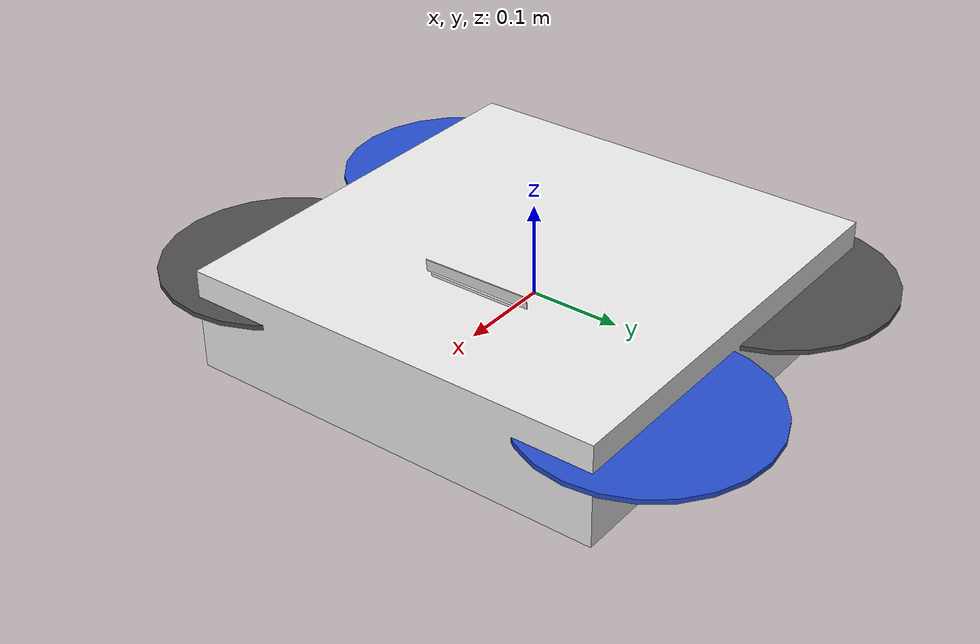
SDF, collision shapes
<?xml version='1.0'?>
<sdf version='1.6'>
  <model name='iris_aruco_late'>
    <link name='/imu_link'>
      <pose frame=''>0 0 0 -0 -0 -0</pose>
      <inertial>
        <pose frame=''>0 0 0 0 -0 0</pose>
        <mass>0.015</mass>
        <inertia>
          <ixx>1e-05</ixx>
          <ixy>0</ixy>
          <ixz>0</ixz>
          <iyy>1e-05</iyy>
          <iyz>0</iyz>
          <izz>1e-05</izz>
        </inertia>
      </inertial>
      <self_collide>0</self_collide>
      <enable_wind>0</enable_wind>
      <kinematic>0</kinematic>
    </link>
    <link name='base_link'>
      <pose frame=''>0 0 0 -0 -0 -0</pose>
      <inertial>
        <pose frame=''>0 0 0 0 -0 0</pose>
        <mass>1.5</mass>
        <inertia>
          <ixx>0.029125</ixx>
          <ixy>0</ixy>
          <ixz>0</ixz>
          <iyy>0.029125</iyy>
          <iyz>0</iyz>
          <izz>0.055225</izz>
        </inertia>
      </inertial>
      <gravity>1</gravity>
      <velocity_decay/>
      <self_collide>0</self_collide>
      <enable_wind>0</enable_wind>
      <kinematic>0</kinematic>
      <visual name='base_link_inertia_visual'>
        <pose frame=''>0 0 0 0 -0 0</pose>
        <geometry>
          <mesh>
            <scale>1 1 1</scale>
            <uri>model://rotors_description/meshes/iris.stl</uri>
          </mesh>
        </geometry>
        <material>
          <script>
            <name>Gazebo/White</name>
            <uri>file://media/materials/scripts/gazebo.material</uri>
          </script>
          <shader type='pixel'/>
          <emissive>0 0 0 1</emissive>
        </material>
        <transparency>0</transparency>
        <cast_shadows>1</cast_shadows>
      </visual>
      <collision name='base_link_inertia_collision'>
        <laser_retro>0</laser_retro>
        <max_contacts>10</max_contacts>
        <pose frame=''>0 0 0 0 -0 0</pose>
        <geometry>
          <box>
            <size>0.47 0.47 0.11</size>
          </box>
        </geometry>
        <surface>
          <friction>
            <ode>
              <mu>1</mu>
              <mu2>1</mu2>
              <fdir1>0 0 0</fdir1>
              <slip1>0</slip1>
              <slip2>0</slip2>
            </ode>
            <torsional>
              <coefficient>1</coefficient>
              <patch_radius>0</patch_radius>
              <surface_radius>0</surface_radius>
              <use_patch_radius>1</use_patch_radius>
              <ode>
                <slip>0</slip>
              </ode>
            </torsional>
          </friction>
          <bounce>
            <restitution_coefficient>0</restitution_coefficient>
            <threshold>1e+06</threshold>
          </bounce>
          <contact>
            <collide_without_contact>0</collide_without_contact>
            <collide_without_contact_bitmask>1</collide_without_contact_bitmask>
            <collide_bitmask>1</collide_bitmask>
            <ode>
              <soft_cfm>0</soft_cfm>
              <soft_erp>0.2</soft_erp>
              <kp>1e+13</kp>
              <kd>1</kd>
              <max_vel>0</max_vel>
              <min_depth>0.001</min_depth>
            </ode>
            <bullet>
              <split_impulse>1</split_impulse>
              <split_impulse_penetration_threshold>-0.01</split_impulse_penetration_threshold>
              <soft_cfm>0</soft_cfm>
              <soft_erp>0.2</soft_erp>
              <kp>1e+13</kp>
              <kd>1</kd>
            </bullet>
          </contact>
        </surface>
      </collision>
    </link>
    <link name='link_0'>
      <inertial>
        <mass>4.03806e-05</mass>
        <inertia>
          <ixx>4.84601e-08</ixx>
          <ixy>0</ixy>
          <ixz>0</ixz>
          <iyy>4.74708e-08</iyy>
          <iyz>0</iyz>
          <izz>9.59242e-08</izz>
        </inertia>
        <pose frame=''>0 0 0 0 -0 0</pose>
      </inertial>
      <pose frame=''>0.093409 0.004213 0.009383 3.13676 1.45491 -3.13573</pose>
      <self_collide>0</self_collide>
      <enable_wind>0</enable_wind>
      <kinematic>0</kinematic>
      <visual name='visual'>
        <pose frame=''>0 0 0 0 -0 0</pose>
        <geometry>
          <box>
            <size>0.118769 0.12 0.001</size>
          </box>
        </geometry>
        <material>
          <lighting>1</lighting>
          <script>
            <uri>file://media/materials/scripts/gazebo.material</uri>
            <name>Gazebo/White</name>
          </script>
          <shader type='pixel'/>
          <emissive>0 0 0 1</emissive>
        </material>
        <transparency>0</transparency>
        <cast_shadows>1</cast_shadows>
      </visual>
      <collision name='collision'>
        <laser_retro>0</laser_retro>
        <max_contacts>10</max_contacts>
        <pose frame=''>0 0 0 0 -0 0</pose>
        <geometry>
          <box>
            <size>0.118769 0.12 0.001</size>
          </box>
        </geometry>
        <surface>
          <friction>
            <ode>
              <mu>1</mu>
              <mu2>1</mu2>
              <fdir1>0 0 0</fdir1>
              <slip1>0</slip1>
              <slip2>0</slip2>
            </ode>
            <torsional>
              <coefficient>1</coefficient>
              <patch_radius>0</patch_radius>
              <surface_radius>0</surface_radius>
              <use_patch_radius>1</use_patch_radius>
              <ode>
                <slip>0</slip>
              </ode>
            </torsional>
          </friction>
          <bounce>
            <restitution_coefficient>0</restitution_coefficient>
            <threshold>1e+06</threshold>
          </bounce>
          <contact>
            <collide_without_contact>0</collide_without_contact>
            <collide_without_contact_bitmask>1</collide_without_contact_bitmask>
            <collide_bitmask>1</collide_bitmask>
            <ode>
              <soft_cfm>0</soft_cfm>
              <soft_erp>0.2</soft_erp>
              <kp>1e+13</kp>
              <kd>1</kd>
              <max_vel>0.01</max_vel>
              <min_depth>0</min_depth>
            </ode>
            <bullet>
              <split_impulse>1</split_impulse>
              <split_impulse_penetration_threshold>-0.01</split_impulse_penetration_threshold>
              <soft_cfm>0</soft_cfm>
              <soft_erp>0.2</soft_erp>
              <kp>1e+13</kp>
              <kd>1</kd>
            </bullet>
          </contact>
        </surface>
      </collision>
    </link>
    <link name='rotor_0'>
      <pose frame=''>0.13 -0.22 0.023 -0 -0 -0</pose>
      <inertial>
        <pose frame=''>0 0 0 0 -0 0</pose>
        <mass>0.005</mass>
        <inertia>
          <ixx>9.75e-07</ixx>
          <ixy>0</ixy>
          <ixz>0</ixz>
          <iyy>0.000273104</iyy>
          <iyz>0</iyz>
          <izz>0.000274004</izz>
        </inertia>
      </inertial>
      <gravity>1</gravity>
      <velocity_decay/>
      <self_collide>0</self_collide>
      <enable_wind>0</enable_wind>
      <kinematic>0</kinematic>
      <visual name='rotor_0_visual'>
        <pose frame=''>0 0 0 0 -0 0</pose>
        <geometry>
          <mesh>
            <scale>1 1 1</scale>
            <uri>model://rotors_description/meshes/iris_prop_ccw.dae</uri>
          </mesh>
        </geometry>
        <material>
          <script>
            <name>Gazebo/DarkGrey</name>
            <uri>file://media/materials/scripts/gazebo.material</uri>
          </script>
          <shader type='pixel'/>
        </material>
        <transparency>0</transparency>
        <cast_shadows>1</cast_shadows>
      </visual>
      <collision name='rotor_0_collision'>
        <laser_retro>0</laser_retro>
        <max_contacts>10</max_contacts>
        <pose frame=''>0 0 0 0 -0 0</pose>
        <geometry>
          <cylinder>
            <radius>0.128</radius>
            <length>0.005</length>
          </cylinder>
        </geometry>
        <surface>
          <friction>
            <ode>
              <mu>1</mu>
              <mu2>1</mu2>
              <fdir1>0 0 0</fdir1>
              <slip1>0</slip1>
              <slip2>0</slip2>
            </ode>
            <torsional>
              <coefficient>1</coefficient>
              <patch_radius>0</patch_radius>
              <surface_radius>0</surface_radius>
              <use_patch_radius>1</use_patch_radius>
              <ode>
                <slip>0</slip>
              </ode>
            </torsional>
          </friction>
          <bounce>
            <restitution_coefficient>0</restitution_coefficient>
            <threshold>1e+06</threshold>
          </bounce>
          <contact>
            <collide_without_contact>0</collide_without_contact>
            <collide_without_contact_bitmask>1</collide_without_contact_bitmask>
            <collide_bitmask>1</collide_bitmask>
            <ode>
              <soft_cfm>0</soft_cfm>
              <soft_erp>0.2</soft_erp>
              <kp>1e+13</kp>
              <kd>1</kd>
              <max_vel>0.01</max_vel>
              <min_depth>0</min_depth>
            </ode>
            <bullet>
              <split_impulse>1</split_impulse>
              <split_impulse_penetration_threshold>-0.01</split_impulse_penetration_threshold>
              <soft_cfm>0</soft_cfm>
              <soft_erp>0.2</soft_erp>
              <kp>1e+13</kp>
              <kd>1</kd>
            </bullet>
          </contact>
        </surface>
      </collision>
    </link>
    <link name='rotor_1'>
      <pose frame=''>-0.13 0.2 0.023 -0 -0 -0</pose>
      <inertial>
        <pose frame=''>0 0 0 0 -0 0</pose>
        <mass>0.005</mass>
        <inertia>
          <ixx>9.75e-07</ixx>
          <ixy>0</ixy>
          <ixz>0</ixz>
          <iyy>0.000273104</iyy>
          <iyz>0</iyz>
          <izz>0.000274004</izz>
        </inertia>
      </inertial>
      <gravity>1</gravity>
      <velocity_decay/>
      <self_collide>0</self_collide>
      <enable_wind>0</enable_wind>
      <kinematic>0</kinematic>
      <visual name='rotor_1_visual'>
        <pose frame=''>0 0 0 0 -0 0</pose>
        <geometry>
          <mesh>
            <scale>1 1 1</scale>
            <uri>model://rotors_description/meshes/iris_prop_ccw.dae</uri>
          </mesh>
        </geometry>
        <material>
          <script>
            <name>Gazebo/DarkGrey</name>
            <uri>file://media/materials/scripts/gazebo.material</uri>
          </script>
          <shader type='pixel'/>
        </material>
        <transparency>0</transparency>
        <cast_shadows>1</cast_shadows>
      </visual>
      <collision name='rotor_1_collision'>
        <laser_retro>0</laser_retro>
        <max_contacts>10</max_contacts>
        <pose frame=''>0 0 0 0 -0 0</pose>
        <geometry>
          <cylinder>
            <radius>0.128</radius>
            <length>0.005</length>
          </cylinder>
        </geometry>
        <surface>
          <friction>
            <ode>
              <mu>1</mu>
              <mu2>1</mu2>
              <fdir1>0 0 0</fdir1>
              <slip1>0</slip1>
              <slip2>0</slip2>
            </ode>
            <torsional>
              <coefficient>1</coefficient>
              <patch_radius>0</patch_radius>
              <surface_radius>0</surface_radius>
              <use_patch_radius>1</use_patch_radius>
              <ode>
                <slip>0</slip>
              </ode>
            </torsional>
          </friction>
          <bounce>
            <restitution_coefficient>0</restitution_coefficient>
            <threshold>1e+06</threshold>
          </bounce>
          <contact>
            <collide_without_contact>0</collide_without_contact>
            <collide_without_contact_bitmask>1</collide_without_contact_bitmask>
            <collide_bitmask>1</collide_bitmask>
            <ode>
              <soft_cfm>0</soft_cfm>
              <soft_erp>0.2</soft_erp>
              <kp>1e+13</kp>
              <kd>1</kd>
              <max_vel>0.01</max_vel>
              <min_depth>0</min_depth>
            </ode>
            <bullet>
              <split_impulse>1</split_impulse>
              <split_impulse_penetration_threshold>-0.01</split_impulse_penetration_threshold>
              <soft_cfm>0</soft_cfm>
              <soft_erp>0.2</soft_erp>
              <kp>1e+13</kp>
              <kd>1</kd>
            </bullet>
          </contact>
        </surface>
      </collision>
    </link>
    <link name='rotor_2'>
      <pose frame=''>0.13 0.22 0.023 -0 -0 -0</pose>
      <inertial>
        <pose frame=''>0 0 0 0 -0 0</pose>
        <mass>0.005</mass>
        <inertia>
          <ixx>9.75e-07</ixx>
          <ixy>0</ixy>
          <ixz>0</ixz>
          <iyy>0.000273104</iyy>
          <iyz>0</iyz>
          <izz>0.000274004</izz>
        </inertia>
      </inertial>
      <gravity>1</gravity>
      <velocity_decay/>
      <self_collide>0</self_collide>
      <enable_wind>0</enable_wind>
      <kinematic>0</kinematic>
      <visual name='rotor_2_visual'>
        <pose frame=''>0 0 0 0 -0 0</pose>
        <geometry>
          <mesh>
            <scale>1 1 1</scale>
            <uri>model://rotors_description/meshes/iris_prop_cw.dae</uri>
          </mesh>
        </geometry>
        <material>
          <script>
            <name>Gazebo/Blue</name>
            <uri>file://media/materials/scripts/gazebo.material</uri>
          </script>
          <shader type='pixel'/>
        </material>
        <transparency>0</transparency>
        <cast_shadows>1</cast_shadows>
      </visual>
      <collision name='rotor_2_collision'>
        <laser_retro>0</laser_retro>
        <max_contacts>10</max_contacts>
        <pose frame=''>0 0 0 0 -0 0</pose>
        <geometry>
          <cylinder>
            <radius>0.128</radius>
            <length>0.005</length>
          </cylinder>
        </geometry>
        <surface>
          <friction>
            <ode>
              <mu>1</mu>
              <mu2>1</mu2>
              <fdir1>0 0 0</fdir1>
              <slip1>0</slip1>
              <slip2>0</slip2>
            </ode>
            <torsional>
              <coefficient>1</coefficient>
              <patch_radius>0</patch_radius>
              <surface_radius>0</surface_radius>
              <use_patch_radius>1</use_patch_radius>
              <ode>
                <slip>0</slip>
              </ode>
            </torsional>
          </friction>
          <bounce>
            <restitution_coefficient>0</restitution_coefficient>
            <threshold>1e+06</threshold>
          </bounce>
          <contact>
            <collide_without_contact>0</collide_without_contact>
            <collide_without_contact_bitmask>1</collide_without_contact_bitmask>
            <collide_bitmask>1</collide_bitmask>
            <ode>
              <soft_cfm>0</soft_cfm>
              <soft_erp>0.2</soft_erp>
              <kp>1e+13</kp>
              <kd>1</kd>
              <max_vel>0.01</max_vel>
              <min_depth>0</min_depth>
            </ode>
            <bullet>
              <split_impulse>1</split_impulse>
              <split_impulse_penetration_threshold>-0.01</split_impulse_penetration_threshold>
              <soft_cfm>0</soft_cfm>
              <soft_erp>0.2</soft_erp>
              <kp>1e+13</kp>
              <kd>1</kd>
            </bullet>
          </contact>
        </surface>
      </collision>
    </link>
    <link name='rotor_3'>
      <pose frame=''>-0.13 -0.2 0.023 -0 -0 -0</pose>
      <inertial>
        <pose frame=''>0 0 0 0 -0 0</pose>
        <mass>0.005</mass>
        <inertia>
          <ixx>9.75e-07</ixx>
          <ixy>0</ixy>
          <ixz>0</ixz>
          <iyy>0.000273104</iyy>
          <iyz>0</iyz>
          <izz>0.000274004</izz>
        </inertia>
      </inertial>
      <gravity>1</gravity>
      <velocity_decay/>
      <self_collide>0</self_collide>
      <enable_wind>0</enable_wind>
      <kinematic>0</kinematic>
      <visual name='rotor_3_visual'>
        <pose frame=''>0 0 0 0 -0 0</pose>
        <geometry>
          <mesh>
            <scale>1 1 1</scale>
            <uri>model://rotors_description/meshes/iris_prop_cw.dae</uri>
          </mesh>
        </geometry>
        <material>
          <script>
            <name>Gazebo/Blue</name>
            <uri>file://media/materials/scripts/gazebo.material</uri>
          </script>
          <shader type='pixel'/>
        </material>
        <transparency>0</transparency>
        <cast_shadows>1</cast_shadows>
      </visual>
      <collision name='rotor_3_collision'>
        <laser_retro>0</laser_retro>
        <max_contacts>10</max_contacts>
        <pose frame=''>0 0 0 0 -0 0</pose>
        <geometry>
          <cylinder>
            <radius>0.128</radius>
            <length>0.005</length>
          </cylinder>
        </geometry>
        <surface>
          <friction>
            <ode>
              <mu>1</mu>
              <mu2>1</mu2>
              <fdir1>0 0 0</fdir1>
              <slip1>0</slip1>
              <slip2>0</slip2>
            </ode>
            <torsional>
              <coefficient>1</coefficient>
              <patch_radius>0</patch_radius>
              <surface_radius>0</surface_radius>
              <use_patch_radius>1</use_patch_radius>
              <ode>
                <slip>0</slip>
              </ode>
            </torsional>
          </friction>
          <bounce>
            <restitution_coefficient>0</restitution_coefficient>
            <threshold>1e+06</threshold>
          </bounce>
          <contact>
            <collide_without_contact>0</collide_without_contact>
            <collide_without_contact_bitmask>1</collide_without_contact_bitmask>
            <collide_bitmask>1</collide_bitmask>
            <ode>
              <soft_cfm>0</soft_cfm>
              <soft_erp>0.2</soft_erp>
              <kp>1e+13</kp>
              <kd>1</kd>
              <max_vel>0.01</max_vel>
              <min_depth>0</min_depth>
            </ode>
            <bullet>
              <split_impulse>1</split_impulse>
              <split_impulse_penetration_threshold>-0.01</split_impulse_penetration_threshold>
              <soft_cfm>0</soft_cfm>
              <soft_erp>0.2</soft_erp>
              <kp>1e+13</kp>
              <kd>1</kd>
            </bullet>
          </contact>
        </surface>
      </collision>
    </link>
    <model name='arucoplate'>
      <link name='link_0'>
        <inertial>
          <mass>6.79082e-06</mass>
          <inertia>
            <ixx>2.79888e-09</ixx>
            <ixy>0</ixy>
            <ixz>0</ixz>
            <iyy>3.14725e-09</iyy>
            <iyz>0</iyz>
            <izz>5.94397e-09</izz>
          </inertia>
          <pose frame=''>0 0 0 0 -0 0</pose>
        </inertial>
        <pose frame=''>0 0 -0 0 -0 0</pose>
        <gravity>1</gravity>
        <self_collide>0</self_collide>
        <kinematic>0</kinematic>
        <enable_wind>0</enable_wind>
        <visual name='visual'>
          <pose frame=''>0 0 0 0 -0 0</pose>
          <geometry>
            <box>
              <size>0.1 0.1 0.002</size>
            </box>
          </geometry>
          <material>
            <script>
              <uri>model://visual_marker/materials/scripts</uri>
              <uri>model://visual_marker/materials/textures</uri>
              <name>ArucoVisualMarker7/Marker</name>
            </script>
            <ambient>1 1 1 1</ambient>
            <diffuse>1 1 1 1</diffuse>
            <specular>0 0 0 1</specular>
            <emissive>1 1 1 0</emissive>
            <shader type='vertex'>
              <normal_map>__default__</normal_map>
            </shader>
          </material>
          <pose frame=''>0 0 0 0 -0 0</pose>
          <cast_shadows>1</cast_shadows>
          <transparency>0</transparency>
        </visual>
        <collision name='collision'>
          <laser_retro>0</laser_retro>
          <max_contacts>10</max_contacts>
          <pose frame=''>0 0 0 0 -0 0</pose>
          <geometry>
            <box>
              <size>0.1 0.1 0.002</size>
            </box>
          </geometry>
          <surface>
            <friction>
              <ode>
                <mu>1</mu>
                <mu2>1</mu2>
                <fdir1>0 0 0</fdir1>
                <slip1>0</slip1>
                <slip2>0</slip2>
              </ode>
              <torsional>
                <coefficient>1</coefficient>
                <patch_radius>0</patch_radius>
                <surface_radius>0</surface_radius>
                <use_patch_radius>1</use_patch_radius>
                <ode>
                  <slip>0</slip>
                </ode>
              </torsional>
            </friction>
            <bounce>
              <restitution_coefficient>0</restitution_coefficient>
              <threshold>1e+06</threshold>
            </bounce>
            <contact>
              <collide_without_contact>0</collide_without_contact>
              <collide_without_contact_bitmask>1</collide_without_contact_bitmask>
              <collide_bitmask>1</collide_bitmask>
              <ode>
                <soft_cfm>0</soft_cfm>
                <soft_erp>0.2</soft_erp>
                <kp>1e+13</kp>
                <kd>1</kd>
                <max_vel>0.01</max_vel>
                <min_depth>0</min_depth>
              </ode>
              <bullet>
                <split_impulse>1</split_impulse>
                <split_impulse_penetration_threshold>-0.01</split_impulse_penetration_threshold>
                <soft_cfm>0</soft_cfm>
                <soft_erp>0.2</soft_erp>
                <kp>1e+13</kp>
                <kd>1</kd>
              </bullet>
            </contact>
          </surface>
        </collision>
      </link>
      <static>0</static>
      <allow_auto_disable>1</allow_auto_disable>
      <pose frame=''>0.098219 0.0042 0.00883 -0 1.44571 -3.14159</pose>
    </model>
    <model name='gps0'>
      <link name='link'>
        <pose frame=''>0 0 0 0 -0 0</pose>
        <inertial>
          <pose frame=''>0 0 0 0 -0 0</pose>
          <mass>0.01</mass>
          <inertia>
            <ixx>2.1733e-06</ixx>
            <ixy>0</ixy>
            <ixz>0</ixz>
            <iyy>2.1733e-06</iyy>
            <iyz>0</iyz>
            <izz>1.8e-07</izz>
          </inertia>
        </inertial>
        <visual name='visual'>
          <geometry>
            <cylinder>
              <radius>0.01</radius>
              <length>0.002</length>
            </cylinder>
          </geometry>
          <material>
            <script>
              <name>Gazebo/Black</name>
              <uri>__default__</uri>
            </script>
          </material>
        </visual>
        <sensor name='gps' type='gps'>
          <pose frame=''>0 0 0 0 -0 0</pose>
          <plugin name='gps_plugin' filename='libgazebo_gps_plugin.so'>
            <robotNamespace/>
            <gpsNoise>1</gpsNoise>
            <gpsXYRandomWalk>2.0</gpsXYRandomWalk>
            <gpsZRandomWalk>4.0</gpsZRandomWalk>
            <gpsXYNoiseDensity>0.0002</gpsXYNoiseDensity>
            <gpsZNoiseDensity>0.0004</gpsZNoiseDensity>
            <gpsVXYNoiseDensity>0.2</gpsVXYNoiseDensity>
            <gpsVZNoiseDensity>0.4</gpsVZNoiseDensity>
          </plugin>
          <gps/>
        </sensor>
        <self_collide>0</self_collide>
        <enable_wind>0</enable_wind>
        <kinematic>0</kinematic>
      </link>
      <pose frame=''>0 0 0 -0 -0 -0</pose>
    </model>
    <joint name='/imu_joint' type='revolute'>
      <parent>base_link</parent>
      <child>/imu_link</child>
      <pose frame=''>0 0 0 0 -0 0</pose>
      <axis>
        <xyz>1 0 0</xyz>
        <use_parent_model_frame>0</use_parent_model_frame>
        <limit>
          <lower>0</lower>
          <upper>0</upper>
          <effort>0</effort>
          <velocity>0</velocity>
        </limit>
        <dynamics>
          <spring_reference>0</spring_reference>
          <spring_stiffness>0</spring_stiffness>
          <damping>0</damping>
          <friction>0</friction>
        </dynamics>
      </axis>
      <physics>
        <ode>
          <limit>
            <cfm>0</cfm>
            <erp>0.2</erp>
          </limit>
          <suspension>
            <cfm>0</cfm>
            <erp>0.2</erp>
          </suspension>
        </ode>
      </physics>
    </joint>
    <joint name='base_link_JOINT_0_0' type='fixed'>
      <parent>base_link</parent>
      <child>link_0</child>
      <pose frame=''>0 0 0 0 -0 0</pose>
      <physics>
        <ode>
          <limit>
            <cfm>0</cfm>
            <erp>0.2</erp>
          </limit>
          <suspension>
            <cfm>0</cfm>
            <erp>0.2</erp>
          </suspension>
        </ode>
      </physics>
    </joint>
    <joint name='base_link_JOINT_0' type='fixed'>
      <parent>base_link</parent>
      <child>arucoplate::link_0</child>
      <pose frame=''>0 0 0 0 -0 0</pose>
      <physics>
        <ode>
          <limit>
            <cfm>0</cfm>
            <erp>0.2</erp>
          </limit>
          <suspension>
            <cfm>0</cfm>
            <erp>0.2</erp>
          </suspension>
        </ode>
      </physics>
    </joint>
    <joint name='gps0_joint' type='fixed'>
      <parent>base_link</parent>
      <child>gps0::link</child>
      <pose frame=''>0 0 0 0 -0 0</pose>
      <physics>
        <ode>
          <limit>
            <cfm>0</cfm>
            <erp>0.2</erp>
          </limit>
          <suspension>
            <cfm>0</cfm>
            <erp>0.2</erp>
          </suspension>
        </ode>
      </physics>
    </joint>
    <joint name='rotor_0_joint' type='revolute'>
      <parent>base_link</parent>
      <child>rotor_0</child>
      <pose frame=''>0 0 0 0 -0 0</pose>
      <axis>
        <xyz>0 0 1</xyz>
        <use_parent_model_frame>0</use_parent_model_frame>
        <limit>
          <lower>-1e+16</lower>
          <upper>1e+16</upper>
          <effort>-1</effort>
          <velocity>-1</velocity>
        </limit>
        <dynamics>
          <spring_reference>0</spring_reference>
          <spring_stiffness>0</spring_stiffness>
          <damping>0</damping>
          <friction>0</friction>
        </dynamics>
      </axis>
      <physics>
        <ode>
          <limit>
            <cfm>0</cfm>
            <erp>0.2</erp>
          </limit>
          <suspension>
            <cfm>0</cfm>
            <erp>0.2</erp>
          </suspension>
        </ode>
      </physics>
    </joint>
    <joint name='rotor_1_joint' type='revolute'>
      <parent>base_link</parent>
      <child>rotor_1</child>
      <pose frame=''>0 0 0 0 -0 0</pose>
      <axis>
        <xyz>0 0 1</xyz>
        <use_parent_model_frame>0</use_parent_model_frame>
        <limit>
          <lower>-1e+16</lower>
          <upper>1e+16</upper>
          <effort>-1</effort>
          <velocity>-1</velocity>
        </limit>
        <dynamics>
          <spring_reference>0</spring_reference>
          <spring_stiffness>0</spring_stiffness>
          <damping>0</damping>
          <friction>0</friction>
        </dynamics>
      </axis>
      <physics>
        <ode>
          <limit>
            <cfm>0</cfm>
            <erp>0.2</erp>
          </limit>
          <suspension>
            <cfm>0</cfm>
            <erp>0.2</erp>
          </suspension>
        </ode>
      </physics>
    </joint>
    <joint name='rotor_2_joint' type='revolute'>
      <parent>base_link</parent>
      <child>rotor_2</child>
      <pose frame=''>0 0 0 0 -0 0</pose>
      <axis>
        <xyz>0 0 1</xyz>
        <use_parent_model_frame>0</use_parent_model_frame>
        <limit>
          <lower>-1e+16</lower>
          <upper>1e+16</upper>
          <effort>-1</effort>
          <velocity>-1</velocity>
        </limit>
        <dynamics>
          <spring_reference>0</spring_reference>
          <spring_stiffness>0</spring_stiffness>
          <damping>0</damping>
          <friction>0</friction>
        </dynamics>
      </axis>
      <physics>
        <ode>
          <limit>
            <cfm>0</cfm>
            <erp>0.2</erp>
          </limit>
          <suspension>
            <cfm>0</cfm>
            <erp>0.2</erp>
          </suspension>
        </ode>
      </physics>
    </joint>
    <joint name='rotor_3_joint' type='revolute'>
      <parent>base_link</parent>
      <child>rotor_3</child>
      <pose frame=''>0 0 0 0 -0 0</pose>
      <axis>
        <xyz>0 0 1</xyz>
        <use_parent_model_frame>0</use_parent_model_frame>
        <limit>
          <lower>-1e+16</lower>
          <upper>1e+16</upper>
          <effort>-1</effort>
          <velocity>-1</velocity>
        </limit>
        <dynamics>
          <spring_reference>0</spring_reference>
          <spring_stiffness>0</spring_stiffness>
          <damping>0</damping>
          <friction>0</friction>
        </dynamics>
      </axis>
      <physics>
        <ode>
          <limit>
            <cfm>0</cfm>
            <erp>0.2</erp>
          </limit>
          <suspension>
            <cfm>0</cfm>
            <erp>0.2</erp>
          </suspension>
        </ode>
      </physics>
    </joint>
    <static>0</static>
    <allow_auto_disable>1</allow_auto_disable>
    <plugin name='back_left_motor_model' filename='libgazebo_motor_model.so'>
      <robotNamespace/>
      <jointName>rotor_1_joint</jointName>
      <linkName>rotor_1</linkName>
      <turningDirection>ccw</turningDirection>
      <timeConstantUp>0.0125</timeConstantUp>
      <timeConstantDown>0.025</timeConstantDown>
      <maxRotVelocity>1100</maxRotVelocity>
      <motorConstant>8.54858e-06</motorConstant>
      <momentConstant>0.06</momentConstant>
      <commandSubTopic>/gazebo/command/motor_speed</commandSubTopic>
      <motorNumber>1</motorNumber>
      <rotorDragCoefficient>0.000175</rotorDragCoefficient>
      <rollingMomentCoefficient>1e-06</rollingMomentCoefficient>
      <motorSpeedPubTopic>/motor_speed/1</motorSpeedPubTopic>
      <rotorVelocitySlowdownSim>10</rotorVelocitySlowdownSim>
    </plugin>
    <plugin name='back_right_motor_model' filename='libgazebo_motor_model.so'>
      <robotNamespace/>
      <jointName>rotor_3_joint</jointName>
      <linkName>rotor_3</linkName>
      <turningDirection>cw</turningDirection>
      <timeConstantUp>0.0125</timeConstantUp>
      <timeConstantDown>0.025</timeConstantDown>
      <maxRotVelocity>1100</maxRotVelocity>
      <motorConstant>8.54858e-06</motorConstant>
      <momentConstant>0.06</momentConstant>
      <commandSubTopic>/gazebo/command/motor_speed</commandSubTopic>
      <motorNumber>3</motorNumber>
      <rotorDragCoefficient>0.000175</rotorDragCoefficient>
      <rollingMomentCoefficient>1e-06</rollingMomentCoefficient>
      <motorSpeedPubTopic>/motor_speed/3</motorSpeedPubTopic>
      <rotorVelocitySlowdownSim>10</rotorVelocitySlowdownSim>
    </plugin>
    <plugin name='barometer_plugin' filename='libgazebo_barometer_plugin.so'>
      <robotNamespace/>
      <pubRate>50</pubRate>
      <baroTopic>/baro</baroTopic>
      <baroDriftPaPerSec>0</baroDriftPaPerSec>
    </plugin>
    <plugin name='front_left_motor_model' filename='libgazebo_motor_model.so'>
      <robotNamespace/>
      <jointName>rotor_2_joint</jointName>
      <linkName>rotor_2</linkName>
      <turningDirection>cw</turningDirection>
      <timeConstantUp>0.0125</timeConstantUp>
      <timeConstantDown>0.025</timeConstantDown>
      <maxRotVelocity>1100</maxRotVelocity>
      <motorConstant>8.54858e-06</motorConstant>
      <momentConstant>0.06</momentConstant>
      <commandSubTopic>/gazebo/command/motor_speed</commandSubTopic>
      <motorNumber>2</motorNumber>
      <rotorDragCoefficient>0.000175</rotorDragCoefficient>
      <rollingMomentCoefficient>1e-06</rollingMomentCoefficient>
      <motorSpeedPubTopic>/motor_speed/2</motorSpeedPubTopic>
      <rotorVelocitySlowdownSim>10</rotorVelocitySlowdownSim>
    </plugin>
    <plugin name='front_right_motor_model' filename='libgazebo_motor_model.so'>
      <robotNamespace/>
      <jointName>rotor_0_joint</jointName>
      <linkName>rotor_0</linkName>
      <turningDirection>ccw</turningDirection>
      <timeConstantUp>0.0125</timeConstantUp>
      <timeConstantDown>0.025</timeConstantDown>
      <maxRotVelocity>1100</maxRotVelocity>
      <motorConstant>8.54858e-06</motorConstant>
      <momentConstant>0.06</momentConstant>
      <commandSubTopic>/gazebo/command/motor_speed</commandSubTopic>
      <motorNumber>0</motorNumber>
      <rotorDragCoefficient>0.000175</rotorDragCoefficient>
      <rollingMomentCoefficient>1e-06</rollingMomentCoefficient>
      <motorSpeedPubTopic>/motor_speed/0</motorSpeedPubTopic>
      <rotorVelocitySlowdownSim>10</rotorVelocitySlowdownSim>
    </plugin>
    <plugin name='groundtruth_plugin' filename='libgazebo_groundtruth_plugin.so'>
      <robotNamespace/>
    </plugin>
    <plugin name='magnetometer_plugin' filename='libgazebo_magnetometer_plugin.so'>
      <robotNamespace/>
      <pubRate>100</pubRate>
      <noiseDensity>0.0004</noiseDensity>
      <randomWalk>6.4e-06</randomWalk>
      <biasCorrelationTime>600</biasCorrelationTime>
      <magTopic>/mag</magTopic>
    </plugin>
    <plugin name='mavlink_interface' filename='libgazebo_mavlink_interface.so'>
      <robotNamespace/>
      <imuSubTopic>/imu</imuSubTopic>
      <magSubTopic>/mag</magSubTopic>
      <baroSubTopic>/baro</baroSubTopic>
      <mavlink_addr>INADDR_ANY</mavlink_addr>
      <mavlink_udp_port>14560</mavlink_udp_port>
      <mavlink_tcp_port>4560</mavlink_tcp_port>
      <serialEnabled>0</serialEnabled>
      <serialDevice>/dev/ttyACM0</serialDevice>
      <baudRate>921600</baudRate>
      <qgc_addr>INADDR_ANY</qgc_addr>
      <qgc_udp_port>14550</qgc_udp_port>
      <sdk_addr>INADDR_ANY</sdk_addr>
      <sdk_udp_port>14540</sdk_udp_port>
      <hil_mode>0</hil_mode>
      <hil_state_level>0</hil_state_level>
      <vehicle_is_tailsitter>0</vehicle_is_tailsitter>
      <send_vision_estimation>0</send_vision_estimation>
      <send_odometry>1</send_odometry>
      <enable_lockstep>1</enable_lockstep>
      <use_tcp>1</use_tcp>
      <motorSpeedCommandPubTopic>/gazebo/command/motor_speed</motorSpeedCommandPubTopic>
      <control_channels>
        <channel name='rotor1'>
          <input_index>0</input_index>
          <input_offset>0</input_offset>
          <input_scaling>1000</input_scaling>
          <zero_position_disarmed>0</zero_position_disarmed>
          <zero_position_armed>100</zero_position_armed>
          <joint_control_type>velocity</joint_control_type>
        </channel>
        <channel name='rotor2'>
          <input_index>1</input_index>
          <input_offset>0</input_offset>
          <input_scaling>1000</input_scaling>
          <zero_position_disarmed>0</zero_position_disarmed>
          <zero_position_armed>100</zero_position_armed>
          <joint_control_type>velocity</joint_control_type>
        </channel>
        <channel name='rotor3'>
          <input_index>2</input_index>
          <input_offset>0</input_offset>
          <input_scaling>1000</input_scaling>
          <zero_position_disarmed>0</zero_position_disarmed>
          <zero_position_armed>100</zero_position_armed>
          <joint_control_type>velocity</joint_control_type>
        </channel>
        <channel name='rotor4'>
          <input_index>3</input_index>
          <input_offset>0</input_offset>
          <input_scaling>1000</input_scaling>
          <zero_position_disarmed>0</zero_position_disarmed>
          <zero_position_armed>100</zero_position_armed>
          <joint_control_type>velocity</joint_control_type>
        </channel>
        <channel name='rotor5'>
          <input_index>4</input_index>
          <input_offset>1</input_offset>
          <input_scaling>324.6</input_scaling>
          <zero_position_disarmed>0</zero_position_disarmed>
          <zero_position_armed>0</zero_position_armed>
          <joint_control_type>velocity</joint_control_type>
          <joint_control_pid>
            <p>0.1</p>
            <i>0</i>
            <d>0</d>
            <iMax>0.0</iMax>
            <iMin>0.0</iMin>
            <cmdMax>2</cmdMax>
            <cmdMin>-2</cmdMin>
          </joint_control_pid>
          <joint_name>zephyr_delta_wing::propeller_joint</joint_name>
        </channel>
        <channel name='rotor6'>
          <input_index>5</input_index>
          <input_offset>0</input_offset>
          <input_scaling>0.524</input_scaling>
          <zero_position_disarmed>0</zero_position_disarmed>
          <zero_position_armed>0</zero_position_armed>
          <joint_control_type>position</joint_control_type>
          <joint_name>zephyr_delta_wing::flap_left_joint</joint_name>
          <joint_control_pid>
            <p>10.0</p>
            <i>0</i>
            <d>0</d>
            <iMax>0</iMax>
            <iMin>0</iMin>
            <cmdMax>20</cmdMax>
            <cmdMin>-20</cmdMin>
          </joint_control_pid>
        </channel>
        <channel name='rotor7'>
          <input_index>6</input_index>
          <input_offset>0</input_offset>
          <input_scaling>0.524</input_scaling>
          <zero_position_disarmed>0</zero_position_disarmed>
          <zero_position_armed>0</zero_position_armed>
          <joint_control_type>position</joint_control_type>
          <joint_name>zephyr_delta_wing::flap_right_joint</joint_name>
          <joint_control_pid>
            <p>10.0</p>
            <i>0</i>
            <d>0</d>
            <iMax>0</iMax>
            <iMin>0</iMin>
            <cmdMax>20</cmdMax>
            <cmdMin>-20</cmdMin>
          </joint_control_pid>
        </channel>
        <channel name='rotor8'>
          <input_index>7</input_index>
          <input_offset>0</input_offset>
          <input_scaling>0.524</input_scaling>
          <zero_position_disarmed>0</zero_position_disarmed>
          <zero_position_armed>0</zero_position_armed>
          <joint_control_type>position</joint_control_type>
        </channel>
      </control_channels>
    </plugin>
    <plugin name='rosbag' filename='libgazebo_multirotor_base_plugin.so'>
      <robotNamespace/>
      <linkName>base_link</linkName>
      <rotorVelocitySlowdownSim>10</rotorVelocitySlowdownSim>
    </plugin>
    <plugin name='rotors_gazebo_imu_plugin' filename='libgazebo_imu_plugin.so'>
      <robotNamespace/>
      <linkName>/imu_link</linkName>
      <imuTopic>/imu</imuTopic>
      <gyroscopeNoiseDensity>0.00018665</gyroscopeNoiseDensity>
      <gyroscopeRandomWalk>3.8785e-05</gyroscopeRandomWalk>
      <gyroscopeBiasCorrelationTime>1000.0</gyroscopeBiasCorrelationTime>
      <gyroscopeTurnOnBiasSigma>0.0087</gyroscopeTurnOnBiasSigma>
      <accelerometerNoiseDensity>0.00186</accelerometerNoiseDensity>
      <accelerometerRandomWalk>0.006</accelerometerRandomWalk>
      <accelerometerBiasCorrelationTime>300.0</accelerometerBiasCorrelationTime>
      <accelerometerTurnOnBiasSigma>0.196</accelerometerTurnOnBiasSigma>
    </plugin>
  </model>
</sdf>
